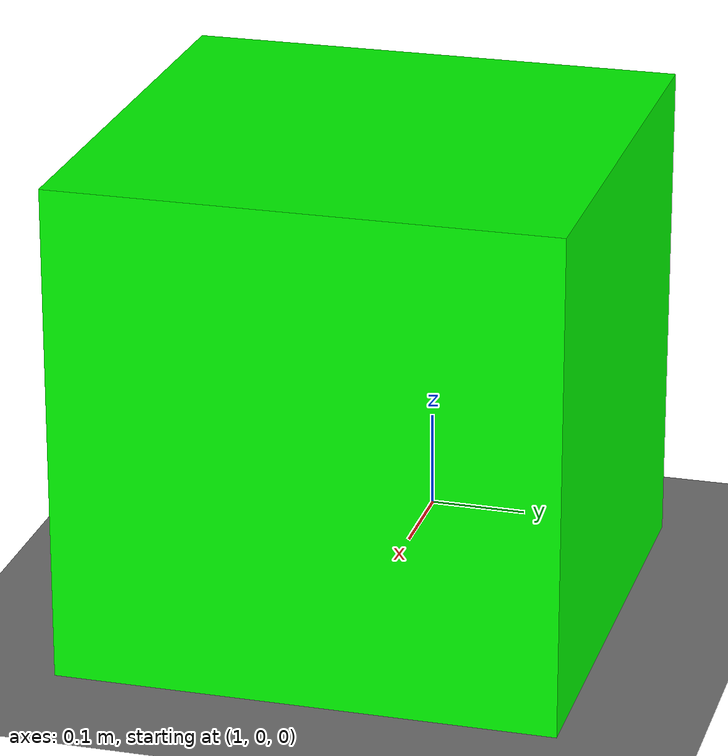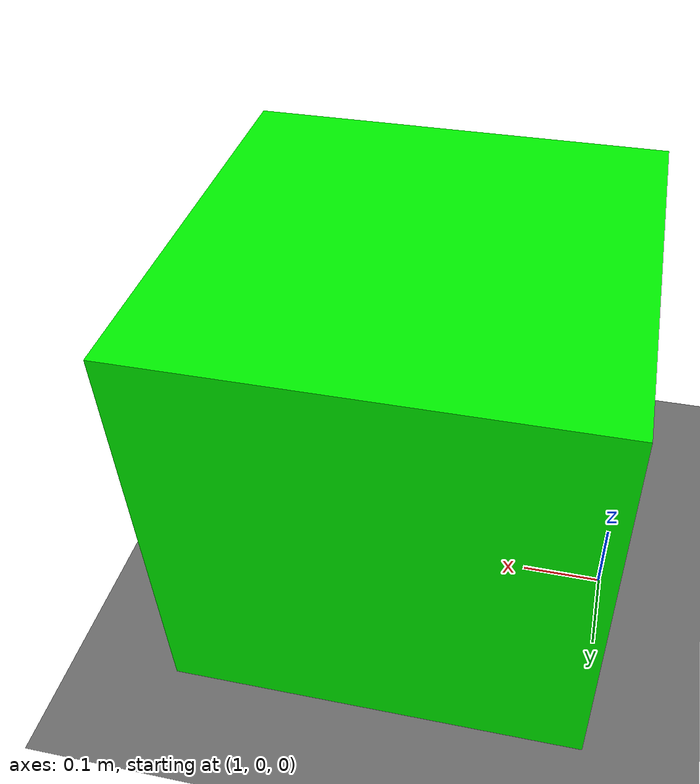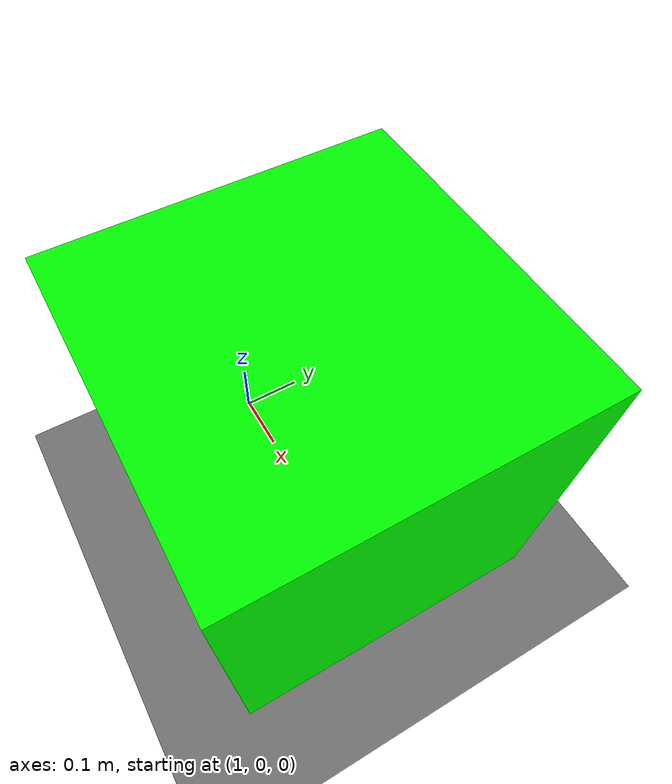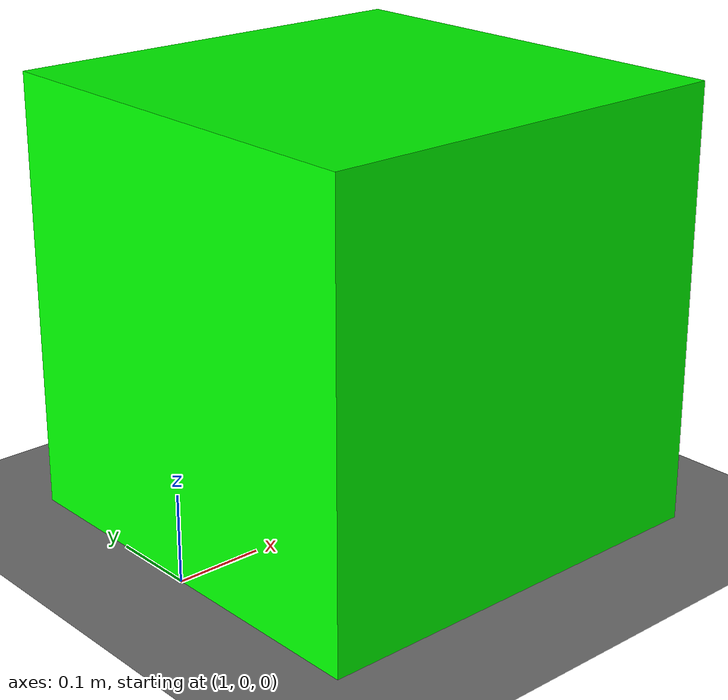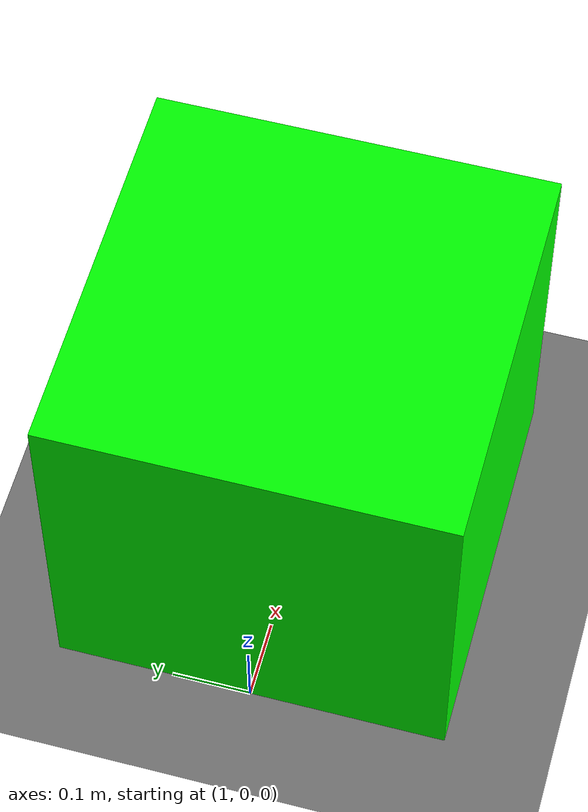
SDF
<?xml version="1.0" ?>
<sdf version="1.6">
  <world name="camera_depth_perception">
    <include>
      <uri>model://sun</uri>
    </include>

    <model name="ground_plane">
      <static>true</static>
      <link name="link">
        <collision name="collision">
          <geometry>
            <plane>
              <normal>0 0 1</normal>
              <size>20 20</size>
            </plane>
          </geometry>
        </collision>
        <visual name="visual">
          <geometry>
            <plane>
              <normal>0 0 1</normal>
              <size>20 20</size>
            </plane>
          </geometry>
          <material>
            <ambient>0.45 0.45 0.45 1</ambient>
            <diffuse>0.45 0.45 0.45 1</diffuse>
          </material>
        </visual>
      </link>
    </model>

    <model name="close_green_cube">
      <pose>1.25 0.0 0.25 0 0 0</pose>
      <static>false</static>
      <link name="link">
        <gravity>false</gravity>
        <collision name="collision">
          <geometry>
            <box><size>0.5 0.5 0.5</size></box>
          </geometry>
        </collision>
        <visual name="visual">
          <geometry>
            <box><size>0.5 0.5 0.5</size></box>
          </geometry>
          <material>
            <ambient>0 1 0 1</ambient>
            <diffuse>0 1 0 1</diffuse>
          </material>
        </visual>
      </link>
    </model>
  </world>
</sdf>
